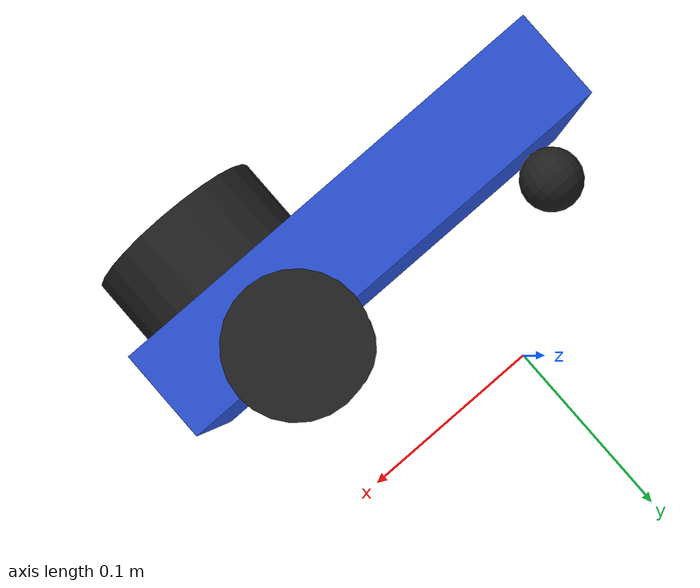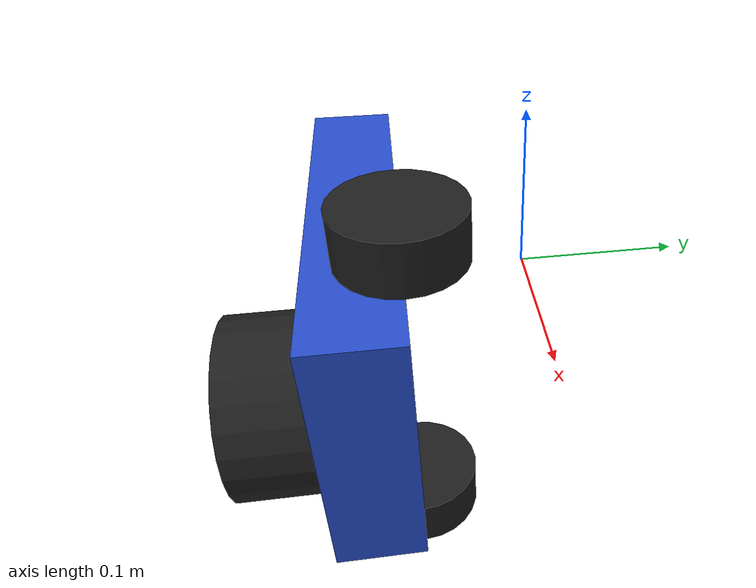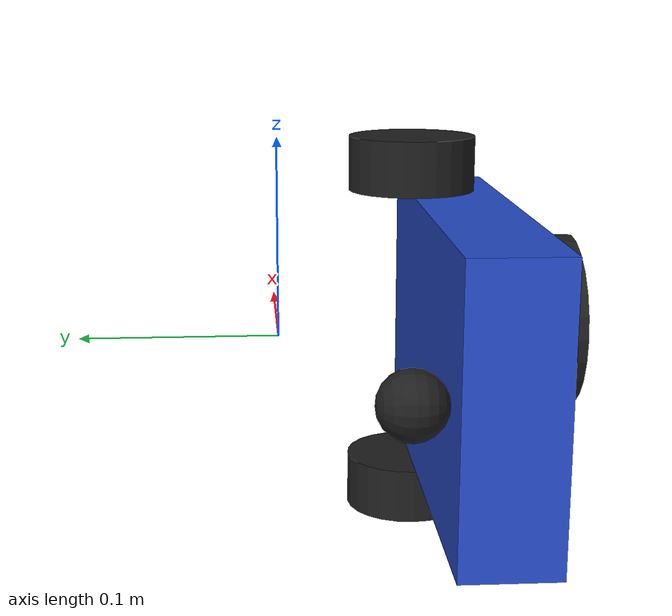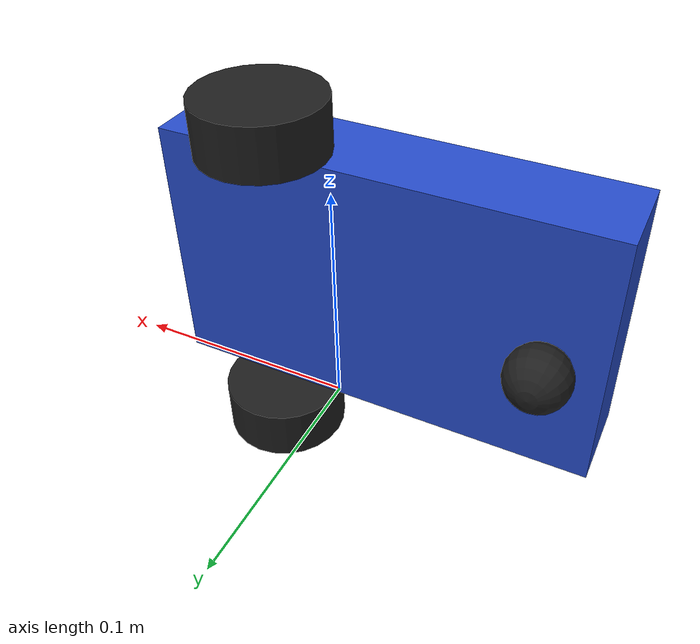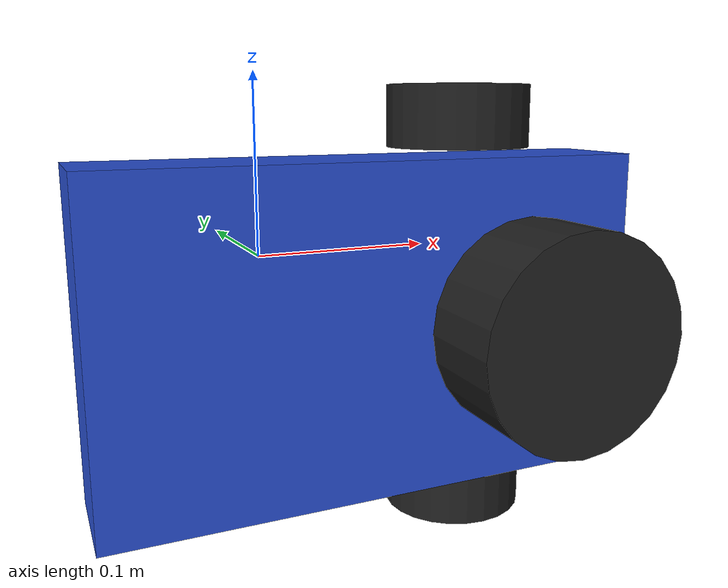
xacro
<?xml version="1.0" ?>
<robot name="my_lidar" xmlns:xacro="http://ros.org/wiki/xacro">
  <xacro:include filename="$(find turtlebot3_description)/urdf/common_properties.xacro"/>
  <xacro:include filename="$(find dharmendra_model)/gazebo/my_lidar/my_lidar.gazebo.xacro"/>

  <link name= "base_footprint" />

  <joint name="base_joint" type="fixed">
    <parent link="base_footprint"/>
    <child link="my_lidar__link_0"/>
    <origin xyz="0.04061 -0.0922  -0.0155" rpy="1.5708 0     0"/>
  </joint>

  <joint name="my_lidar__link_0_right_link1_clone" type="revolute">
    <parent link="my_lidar__link_0"/>
    <child link="my_lidar__link_1_clone"/>
    <origin xyz="0.04061 -0.0922  -0.0155" rpy="1.5708 0     0"/>
    <axis xyz="0 0 1"/>
    <limit lower="-1.79769e+308" upper="1.79769e+308" effort="-1.0" velocity="-1.0"/>
  </joint>
  <joint name="my_lidar__link_0_left_link_1" type="revolute">
    <parent link="my_lidar__link_0"/>
    <child link="my_lidar__link_1"/>
    <origin xyz="0.04061  0.09259 -0.0155" rpy="1.5708 0     0"/>
    <axis xyz="0 0 1"/>
    <limit lower="-1.79769e+308" upper="1.79769e+308" effort="-1.0" velocity="-1.0"/>
  </joint>
  <joint name="my_lidar__link_0_caster_link_2" type="fixed">
    <parent link="my_lidar__link_0"/>
    <child link="my_lidar__link_2"/>
    <origin xyz="-0.11451  0.00097 -0.03299" rpy="0 0 0"/>
    <axis xyz="0 0 0"/>
    <limit lower="0" upper="0" effort="0" velocity="0"/>
  </joint>
  <joint name="my_lidar__link_0_lidar_link_3" type="fixed">
    <parent link="my_lidar__link_0"/>
    <child link="my_lidar__link_3"/>
    <origin xyz="0.05251 -0.00159  0.0545" rpy="0 0 0"/>
    <axis xyz="0 0 0"/>
    <limit lower="0" upper="0" effort="0" velocity="0"/>
  </joint>
  <link name="my_lidar__link_0">
    <inertial>
      <mass value="1"/>
      <origin xyz="0 0 0" rpy="0 0 0"/>
      <inertia ixx="0.166667" ixy="0" ixz="0" iyy="0.166667" iyz="0" izz="0.166667"/>
    </inertial>
    <collision name="my_lidar__collision">
      <origin xyz="-0.01922  0.00023  0.0095" rpy="0 0 0"/>
      <geometry>
        <box size="0.25 0.15 0.05"/>
      </geometry>
    </collision>
    <visual name="my_lidar__visual">
      <origin xyz="-0.01922  0.00023  0.0095" rpy="0 0 0"/>
      <geometry>
        <box size="0.25 0.15 0.05"/>
      </geometry>
    </visual>
  </link>
  <link name="my_lidar__link_1">
    <inertial>
      <mass value="1"/>
      <origin xyz="0 0 0" rpy="0 0 0"/>
      <inertia ixx="0.145833" ixy="0" ixz="0" iyy="0.145833" iyz="0" izz="0.125"/>
    </inertial>
    <collision name="my_lidar__collision">
      <origin xyz="0 0 0" rpy="0 0 0"/>
      <geometry>
        <cylinder radius="0.035" length="0.03"/>
      </geometry>
    </collision>
    <visual name="my_lidar__visual">
      <origin xyz="0 0 0" rpy="0 0 0"/>
      <geometry>
        <cylinder radius="0.035" length="0.03"/>
      </geometry>
    </visual>
  </link>
  <link name="my_lidar__link_1_clone">
    <inertial>
      <mass value="1"/>
      <origin xyz="0 0 0" rpy="0 0 0"/>
      <inertia ixx="0.145833" ixy="0" ixz="0" iyy="0.145833" iyz="0" izz="0.125"/>
    </inertial>
    <collision name="my_lidar__collision">
      <origin xyz="0 0 0" rpy="0 0 0"/>
      <geometry>
        <cylinder radius="0.035" length="0.03"/>
      </geometry>
    </collision>
    <visual name="my_lidar__visual">
      <origin xyz="0 0 0" rpy="0 0 0"/>
      <geometry>
        <cylinder radius="0.035" length="0.03"/>
      </geometry>
    </visual>
  </link>
  <link name="my_lidar__link_2">
    <inertial>
      <mass value="1"/>
      <origin xyz="0 0 0" rpy="0 0 0"/>
      <inertia ixx="0.1" ixy="0" ixz="0" iyy="0.1" iyz="0" izz="0.1"/>
    </inertial>
    <collision name="my_lidar__collision">
      <origin xyz="0 0 0" rpy="0 0 0"/>
      <geometry>
        <sphere radius="0.0175"/>
      </geometry>
    </collision>
    <visual name="my_lidar__visual">
      <origin xyz="0 0 0" rpy="0 0 0"/>
      <geometry>
        <sphere radius="0.0175"/>
      </geometry>
    </visual>
  </link>
  <link name="my_lidar__link_3">
    <inertial>
      <mass value="1"/>
      <origin xyz="0 0 0" rpy="0 0 0"/>
      <inertia ixx="0.145833" ixy="0" ixz="0" iyy="0.145833" iyz="0" izz="0.125"/>
    </inertial>
    <collision name="my_lidar__collision">
      <origin xyz="0 0 0" rpy="0 0 0"/>
      <geometry>
        <cylinder radius="0.05" length="0.05"/>
      </geometry>
    </collision>
    <visual name="my_lidar__visual">
      <origin xyz="0 0 0" rpy="0 0 0"/>
      <geometry>
        <cylinder radius="0.05" length="0.05"/>
      </geometry>
    </visual>
  </link>
</robot>
